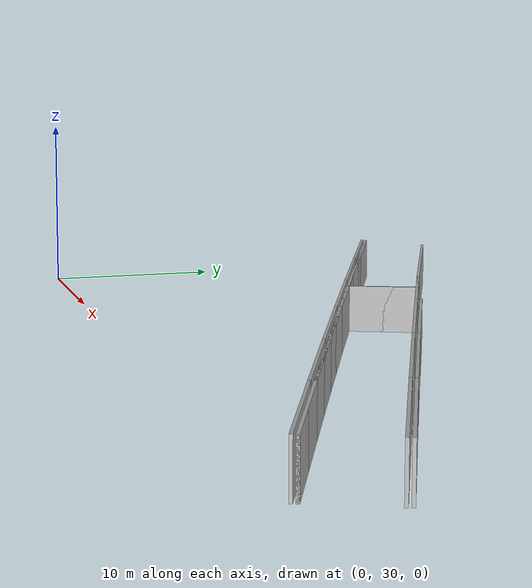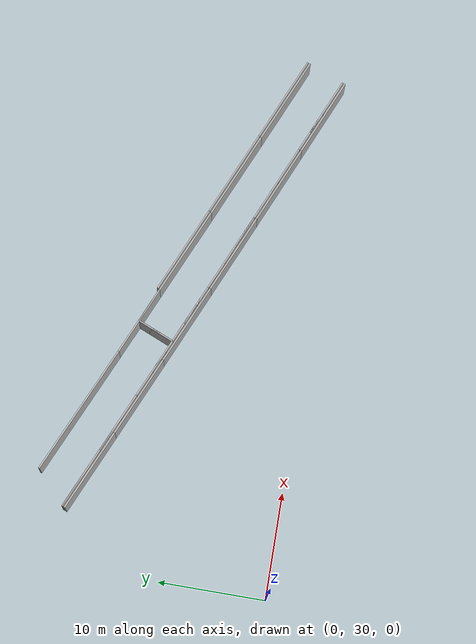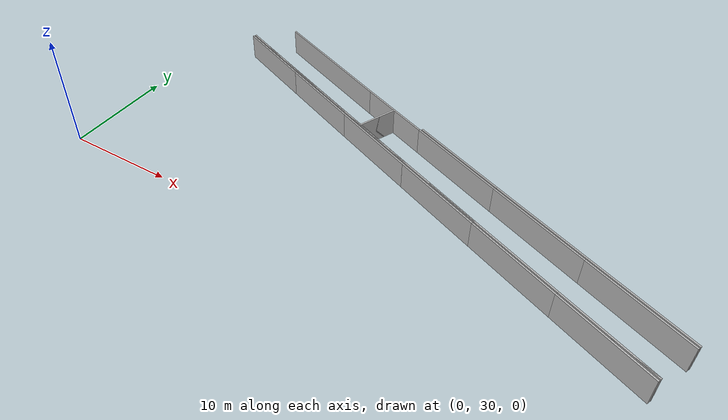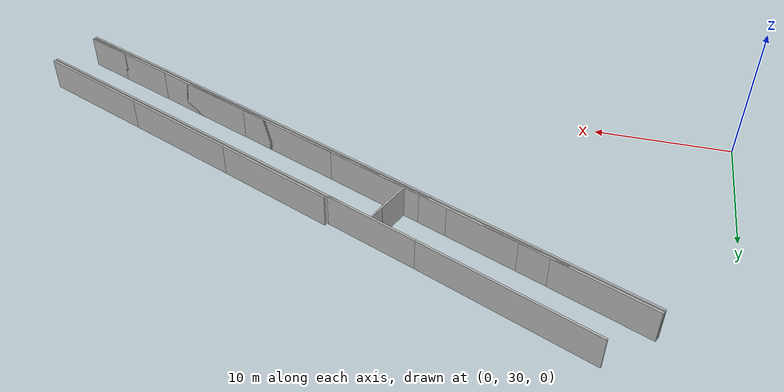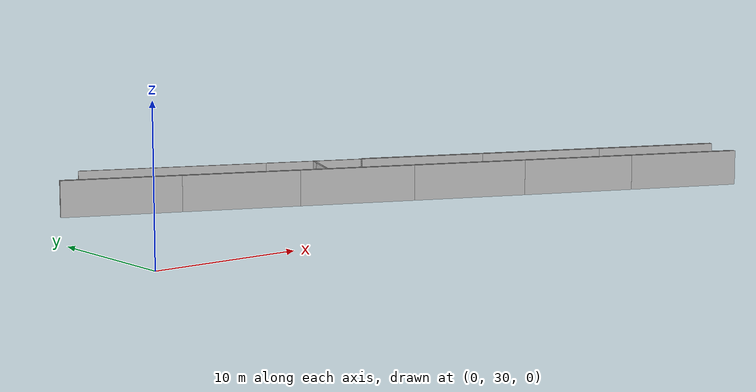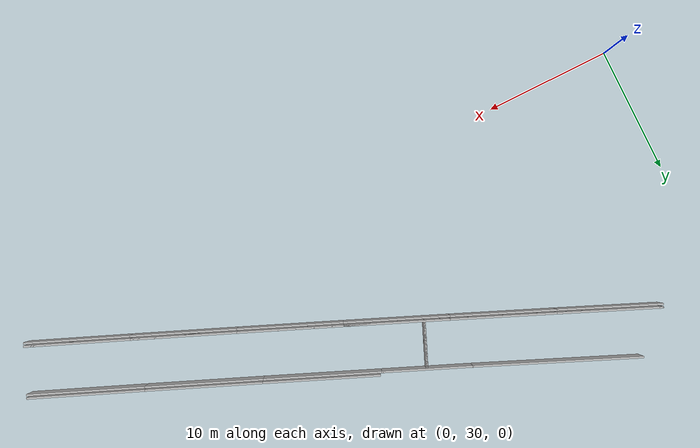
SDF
<?xml version="1.0" ?>
<sdf version="1.6">
  <model name="sps_0509">
    <pose frame="">0 0 0 0 -0 0</pose>
    <static>1</static>
    <self_collide>0</self_collide>
    <allow_auto_disable>0</allow_auto_disable>
    <link name="Wall4318">
      <kinematic>0</kinematic>
      <gravity>1</gravity>
      <self_collide>0</self_collide>
      <collision name="collision">
        <geometry>
          <box>
            <size>13.2303 0.15 2.5</size>
          </box>
        </geometry>
        <pose frame="">0 0 0 0 -0 0</pose>
      </collision>
      <visual name="visual">
        <geometry>
          <box>
            <size>13.2303 0.15 2.5</size>
          </box>
        </geometry>
        <pose frame="">0 0 0 0 -0 0</pose>
        <cast_shadows>1</cast_shadows>
        <transparency>0.0</transparency>
      </visual>
      <pose frame="">14.2392 49.8815 1.25 0 0 -0.40485</pose>
    </link>
    <link name="Wall4319">
      <kinematic>0</kinematic>
      <gravity>1</gravity>
      <self_collide>0</self_collide>
      <collision name="collision">
        <geometry>
          <box>
            <size>3.53007 0.15 2.5</size>
          </box>
        </geometry>
        <pose frame="">0 0 0 0 -0 0</pose>
      </collision>
      <visual name="visual">
        <geometry>
          <box>
            <size>3.53007 0.15 2.5</size>
          </box>
        </geometry>
        <pose frame="">0 0 0 0 -0 0</pose>
        <cast_shadows>1</cast_shadows>
        <transparency>0.0</transparency>
      </visual>
      <pose frame="">21.9471 46.5926 1.25 0 0 -0.397511</pose>
    </link>
    <link name="Wall4320">
      <kinematic>0</kinematic>
      <gravity>1</gravity>
      <self_collide>0</self_collide>
      <collision name="collision">
        <geometry>
          <box>
            <size>3.73853 0.15 2.5</size>
          </box>
        </geometry>
        <pose frame="">0 0 0 0 -0 0</pose>
      </collision>
      <visual name="visual">
        <geometry>
          <box>
            <size>3.73853 0.15 2.5</size>
          </box>
        </geometry>
        <pose frame="">0 0 0 0 -0 0</pose>
        <cast_shadows>1</cast_shadows>
        <transparency>0.0</transparency>
      </visual>
      <pose frame="">22.8471 44.1874 1.25 0 0 -1.9705</pose>
    </link>
    <link name="Wall4321">
      <kinematic>0</kinematic>
      <gravity>1</gravity>
      <self_collide>0</self_collide>
      <collision name="collision">
        <geometry>
          <box>
            <size>6.17226 0.15 2.5</size>
          </box>
        </geometry>
        <pose frame="">0 0 0 0 -0 0</pose>
      </collision>
      <visual name="visual">
        <geometry>
          <box>
            <size>6.17226 0.15 2.5</size>
          </box>
        </geometry>
        <pose frame="">0 0 0 0 -0 0</pose>
        <cast_shadows>1</cast_shadows>
        <transparency>0.0</transparency>
      </visual>
      <pose frame="">19.2779 43.6692 1.25 0 -0 2.74092</pose>
    </link>
    <link name="Wall4322">
      <kinematic>0</kinematic>
      <gravity>1</gravity>
      <self_collide>0</self_collide>
      <collision name="collision">
        <geometry>
          <box>
            <size>6.17213 0.15 2.5</size>
          </box>
        </geometry>
        <pose frame="">0 0 0 0 -0 0</pose>
      </collision>
      <visual name="visual">
        <geometry>
          <box>
            <size>6.17213 0.15 2.5</size>
          </box>
        </geometry>
        <pose frame="">0 0 0 0 -0 0</pose>
        <cast_shadows>1</cast_shadows>
        <transparency>0.0</transparency>
      </visual>
      <pose frame="">13.5966 46.0814 1.25 0 -0 2.73923</pose>
    </link>
    <link name="Wall4323">
      <kinematic>0</kinematic>
      <gravity>1</gravity>
      <self_collide>0</self_collide>
      <collision name="collision">
        <geometry>
          <box>
            <size>6.17211 0.15 2.5</size>
          </box>
        </geometry>
        <pose frame="">0 0 0 0 -0 0</pose>
      </collision>
      <visual name="visual">
        <geometry>
          <box>
            <size>6.17211 0.15 2.5</size>
          </box>
        </geometry>
        <pose frame="">0 0 0 0 -0 0</pose>
        <cast_shadows>1</cast_shadows>
        <transparency>0.0</transparency>
      </visual>
      <pose frame="">7.91964 48.5035 1.25 0 -0 2.73742</pose>
    </link>
    <link name="Wall6695">
      <kinematic>0</kinematic>
      <gravity>1</gravity>
      <self_collide>0</self_collide>
      <collision name="collision">
        <geometry>
          <box>
            <size>8.26101 0.15 2.5</size>
          </box>
        </geometry>
        <pose frame="">0 0 0 0 -0 0</pose>
      </collision>
      <visual name="visual">
        <geometry>
          <box>
            <size>8.26101 0.15 2.5</size>
          </box>
        </geometry>
        <pose frame="">0 0 0 0 -0 0</pose>
        <cast_shadows>1</cast_shadows>
        <transparency>0.0</transparency>
      </visual>
      <pose frame="">46.9576 32.0869 1.25 0 -0 2.74954</pose>
    </link>
    <link name="Wall6696">
      <kinematic>0</kinematic>
      <gravity>1</gravity>
      <self_collide>0</self_collide>
      <collision name="collision">
        <geometry>
          <box>
            <size>8.26107 0.15 2.5</size>
          </box>
        </geometry>
        <pose frame="">0 0 0 0 -0 0</pose>
      </collision>
      <visual name="visual">
        <geometry>
          <box>
            <size>8.26107 0.15 2.5</size>
          </box>
        </geometry>
        <pose frame="">0 0 0 0 -0 0</pose>
        <cast_shadows>1</cast_shadows>
        <transparency>0.0</transparency>
      </visual>
      <pose frame="">39.327 35.2523 1.25 0 -0 2.74719</pose>
    </link>
    <link name="Wall6697">
      <kinematic>0</kinematic>
      <gravity>1</gravity>
      <self_collide>0</self_collide>
      <collision name="collision">
        <geometry>
          <box>
            <size>8.26096 0.15 2.5</size>
          </box>
        </geometry>
        <pose frame="">0 0 0 0 -0 0</pose>
      </collision>
      <visual name="visual">
        <geometry>
          <box>
            <size>8.26096 0.15 2.5</size>
          </box>
        </geometry>
        <pose frame="">0 0 0 0 -0 0</pose>
        <cast_shadows>1</cast_shadows>
        <transparency>0.0</transparency>
      </visual>
      <pose frame="">31.704 38.4357 1.25 0 -0 2.74482</pose>
    </link>
    <link name="Wall6698">
      <kinematic>0</kinematic>
      <gravity>1</gravity>
      <self_collide>0</self_collide>
      <collision name="collision">
        <geometry>
          <box>
            <size>2.08902 0.15 2.5</size>
          </box>
        </geometry>
        <pose frame="">0 0 0 0 -0 0</pose>
      </collision>
      <visual name="visual">
        <geometry>
          <box>
            <size>2.08902 0.15 2.5</size>
          </box>
        </geometry>
        <pose frame="">0 0 0 0 -0 0</pose>
        <cast_shadows>1</cast_shadows>
        <transparency>0.0</transparency>
      </visual>
      <pose frame="">26.9316 40.4369 1.25 0 -0 2.74341</pose>
    </link>
    <link name="Wall6699">
      <kinematic>0</kinematic>
      <gravity>1</gravity>
      <self_collide>0</self_collide>
      <collision name="collision">
        <geometry>
          <box>
            <size>2.08884 0.15 2.5</size>
          </box>
        </geometry>
        <pose frame="">0 0 0 0 -0 0</pose>
      </collision>
      <visual name="visual">
        <geometry>
          <box>
            <size>2.08884 0.15 2.5</size>
          </box>
        </geometry>
        <pose frame="">0 0 0 0 -0 0</pose>
        <cast_shadows>1</cast_shadows>
        <transparency>0.0</transparency>
      </visual>
      <pose frame="">25.0064 41.2476 1.25 0 -0 2.74265</pose>
    </link>
    <link name="Wall6700">
      <kinematic>0</kinematic>
      <gravity>1</gravity>
      <self_collide>0</self_collide>
      <collision name="collision">
        <geometry>
          <box>
            <size>2.08875 0.15 2.5</size>
          </box>
        </geometry>
        <pose frame="">0 0 0 0 -0 0</pose>
      </collision>
      <visual name="visual">
        <geometry>
          <box>
            <size>2.08875 0.15 2.5</size>
          </box>
        </geometry>
        <pose frame="">0 0 0 0 -0 0</pose>
        <cast_shadows>1</cast_shadows>
        <transparency>0.0</transparency>
      </visual>
      <pose frame="">23.0818 42.0594 1.25 0 -0 2.74222</pose>
    </link>
    <link name="Wall6701">
      <kinematic>0</kinematic>
      <gravity>1</gravity>
      <self_collide>0</self_collide>
      <collision name="collision">
        <geometry>
          <box>
            <size>3.73853 0.15 2.5</size>
          </box>
        </geometry>
        <pose frame="">0 0 0 0 -0 0</pose>
      </collision>
      <visual name="visual">
        <geometry>
          <box>
            <size>3.73853 0.15 2.5</size>
          </box>
        </geometry>
        <pose frame="">0 0 0 0 -0 0</pose>
        <cast_shadows>1</cast_shadows>
        <transparency>0.0</transparency>
      </visual>
      <pose frame="">22.8471 44.1874 1.25 0 -0 1.17109</pose>
    </link>
    <link name="Wall6702">
      <kinematic>0</kinematic>
      <gravity>1</gravity>
      <self_collide>0</self_collide>
      <collision name="collision">
        <geometry>
          <box>
            <size>3.52457 0.15 2.5</size>
          </box>
        </geometry>
        <pose frame="">0 0 0 0 -0 0</pose>
      </collision>
      <visual name="visual">
        <geometry>
          <box>
            <size>3.52457 0.15 2.5</size>
          </box>
        </geometry>
        <pose frame="">0 0 0 0 -0 0</pose>
        <cast_shadows>1</cast_shadows>
        <transparency>0.0</transparency>
      </visual>
      <pose frame="">25.1994 45.2271 1.25 0 0 -0.397509</pose>
    </link>
    <link name="Wall6703">
      <kinematic>0</kinematic>
      <gravity>1</gravity>
      <self_collide>0</self_collide>
      <collision name="collision">
        <geometry>
          <box>
            <size>9.17308 0.15 2.5</size>
          </box>
        </geometry>
        <pose frame="">0 0 0 0 -0 0</pose>
      </collision>
      <visual name="visual">
        <geometry>
          <box>
            <size>9.17308 0.15 2.5</size>
          </box>
        </geometry>
        <pose frame="">0 0 0 0 -0 0</pose>
        <cast_shadows>1</cast_shadows>
        <transparency>0.0</transparency>
      </visual>
      <pose frame="">31.0547 42.7731 1.25 0 0 -0.396619</pose>
    </link>
    <link name="Wall6704">
      <kinematic>0</kinematic>
      <gravity>1</gravity>
      <self_collide>0</self_collide>
      <collision name="collision">
        <geometry>
          <box>
            <size>9.173 0.15 2.5</size>
          </box>
        </geometry>
        <pose frame="">0 0 0 0 -0 0</pose>
      </collision>
      <visual name="visual">
        <geometry>
          <box>
            <size>9.173 0.15 2.5</size>
          </box>
        </geometry>
        <pose frame="">0 0 0 0 -0 0</pose>
        <cast_shadows>1</cast_shadows>
        <transparency>0.0</transparency>
      </visual>
      <pose frame="">39.5199 39.2395 1.25 0 0 -0.394265</pose>
    </link>
    <link name="Wall6705">
      <kinematic>0</kinematic>
      <gravity>1</gravity>
      <self_collide>0</self_collide>
      <collision name="collision">
        <geometry>
          <box>
            <size>9.17274 0.15 2.5</size>
          </box>
        </geometry>
        <pose frame="">0 0 0 0 -0 0</pose>
      </collision>
      <visual name="visual">
        <geometry>
          <box>
            <size>9.17274 0.15 2.5</size>
          </box>
        </geometry>
        <pose frame="">0 0 0 0 -0 0</pose>
        <cast_shadows>1</cast_shadows>
        <transparency>0.0</transparency>
      </visual>
      <pose frame="">47.9932 35.726 1.25 0 0 -0.391885</pose>
    </link>
    <link name="Wall13867">
      <kinematic>0</kinematic>
      <gravity>1</gravity>
      <self_collide>0</self_collide>
      <collision name="collision">
        <geometry>
          <box>
            <size>7.05464 0.15 2.5</size>
          </box>
        </geometry>
        <pose frame="">0 0 0 0 -0 0</pose>
      </collision>
      <visual name="visual">
        <geometry>
          <box>
            <size>7.05464 0.15 2.5</size>
          </box>
        </geometry>
        <pose frame="">0 0 0 0 -0 0</pose>
        <cast_shadows>1</cast_shadows>
        <transparency>0.0</transparency>
      </visual>
      <pose frame="">23.572 45.9104 1.25 0 -0 2.74408</pose>
    </link>
    <link name="Wall18355">
      <kinematic>0</kinematic>
      <gravity>1</gravity>
      <self_collide>0</self_collide>
      <collision name="collision">
        <geometry>
          <box>
            <size>9.17308 0.15 2.5</size>
          </box>
        </geometry>
        <pose frame="">0 0 0 0 -0 0</pose>
      </collision>
      <visual name="visual">
        <geometry>
          <box>
            <size>9.17308 0.15 2.5</size>
          </box>
        </geometry>
        <pose frame="">0 0 0 0 -0 0</pose>
        <cast_shadows>1</cast_shadows>
        <transparency>0.0</transparency>
      </visual>
      <pose frame="">31.0547 42.7731 1.25 0 0 -0.396619</pose>
    </link>
    <link name="Wall18356">
      <kinematic>0</kinematic>
      <gravity>1</gravity>
      <self_collide>0</self_collide>
      <collision name="collision">
        <geometry>
          <box>
            <size>9.173 0.15 2.5</size>
          </box>
        </geometry>
        <pose frame="">0 0 0 0 -0 0</pose>
      </collision>
      <visual name="visual">
        <geometry>
          <box>
            <size>9.173 0.15 2.5</size>
          </box>
        </geometry>
        <pose frame="">0 0 0 0 -0 0</pose>
        <cast_shadows>1</cast_shadows>
        <transparency>0.0</transparency>
      </visual>
      <pose frame="">39.5199 39.2395 1.25 0 0 -0.394265</pose>
    </link>
    <link name="Wall18357">
      <kinematic>0</kinematic>
      <gravity>1</gravity>
      <self_collide>0</self_collide>
      <collision name="collision">
        <geometry>
          <box>
            <size>9.17274 0.15 2.5</size>
          </box>
        </geometry>
        <pose frame="">0 0 0 0 -0 0</pose>
      </collision>
      <visual name="visual">
        <geometry>
          <box>
            <size>9.17274 0.15 2.5</size>
          </box>
        </geometry>
        <pose frame="">0 0 0 0 -0 0</pose>
        <cast_shadows>1</cast_shadows>
        <transparency>0.0</transparency>
      </visual>
      <pose frame="">47.9932 35.726 1.25 0 0 -0.391885</pose>
    </link>
    <link name="Wall35042">
      <kinematic>0</kinematic>
      <gravity>1</gravity>
      <self_collide>0</self_collide>
      <collision name="collision">
        <geometry>
          <box>
            <size>9.13876 0.15 2.5</size>
          </box>
        </geometry>
        <pose frame="">0 0 0 0 -0 0</pose>
      </collision>
      <visual name="visual">
        <geometry>
          <box>
            <size>9.13876 0.15 2.5</size>
          </box>
        </geometry>
        <pose frame="">0 0 0 0 -0 0</pose>
        <cast_shadows>1</cast_shadows>
        <transparency>0.0</transparency>
      </visual>
      <pose frame="">31.2308 42.9704 1.25 0 0 -0.396606</pose>
    </link>
    <link name="Wall35043">
      <kinematic>0</kinematic>
      <gravity>1</gravity>
      <self_collide>0</self_collide>
      <collision name="collision">
        <geometry>
          <box>
            <size>9.13849 0.15 2.5</size>
          </box>
        </geometry>
        <pose frame="">0 0 0 0 -0 0</pose>
      </collision>
      <visual name="visual">
        <geometry>
          <box>
            <size>9.13849 0.15 2.5</size>
          </box>
        </geometry>
        <pose frame="">0 0 0 0 -0 0</pose>
        <cast_shadows>1</cast_shadows>
        <transparency>0.0</transparency>
      </visual>
      <pose frame="">39.6641 39.4501 1.25 0 0 -0.394266</pose>
    </link>
    <link name="Wall35044">
      <kinematic>0</kinematic>
      <gravity>1</gravity>
      <self_collide>0</self_collide>
      <collision name="collision">
        <geometry>
          <box>
            <size>9.13886 0.15 2.5</size>
          </box>
        </geometry>
        <pose frame="">0 0 0 0 -0 0</pose>
      </collision>
      <visual name="visual">
        <geometry>
          <box>
            <size>9.13886 0.15 2.5</size>
          </box>
        </geometry>
        <pose frame="">0 0 0 0 -0 0</pose>
        <cast_shadows>1</cast_shadows>
        <transparency>0.0</transparency>
      </visual>
      <pose frame="">48.1059 35.9497 1.25 0 0 -0.391885</pose>
    </link>
    <link name="Wall37653">
      <kinematic>0</kinematic>
      <gravity>1</gravity>
      <self_collide>0</self_collide>
      <collision name="collision">
        <geometry>
          <box>
            <size>13.2303 0.15 2.5</size>
          </box>
        </geometry>
        <pose frame="">0 0 0 0 -0 0</pose>
      </collision>
      <visual name="visual">
        <geometry>
          <box>
            <size>13.2303 0.15 2.5</size>
          </box>
        </geometry>
        <pose frame="">0 0 0 0 -0 0</pose>
        <cast_shadows>1</cast_shadows>
        <transparency>0.0</transparency>
      </visual>
      <pose frame="">14.2392 49.8815 1.25 0 0 -0.40485</pose>
    </link>
    <link name="Wall37874">
      <kinematic>0</kinematic>
      <gravity>1</gravity>
      <self_collide>0</self_collide>
      <collision name="collision">
        <geometry>
          <box>
            <size>8.26171 0.15 2.5</size>
          </box>
        </geometry>
        <pose frame="">0 0 0 0 -0 0</pose>
      </collision>
      <visual name="visual">
        <geometry>
          <box>
            <size>8.26171 0.15 2.5</size>
          </box>
        </geometry>
        <pose frame="">0 0 0 0 -0 0</pose>
        <cast_shadows>1</cast_shadows>
        <transparency>0.0</transparency>
      </visual>
      <pose frame="">8.78036 47.8648 1.25 0 0 -0.403864</pose>
    </link>
    <link name="Wall37875">
      <kinematic>0</kinematic>
      <gravity>1</gravity>
      <self_collide>0</self_collide>
      <collision name="collision">
        <geometry>
          <box>
            <size>8.26153 0.15 2.5</size>
          </box>
        </geometry>
        <pose frame="">0 0 0 0 -0 0</pose>
      </collision>
      <visual name="visual">
        <geometry>
          <box>
            <size>8.26153 0.15 2.5</size>
          </box>
        </geometry>
        <pose frame="">0 0 0 0 -0 0</pose>
        <cast_shadows>1</cast_shadows>
        <transparency>0.0</transparency>
      </visual>
      <pose frame="">16.3812 44.6272 1.25 0 0 -0.401497</pose>
    </link>
    <link name="Wall37876">
      <kinematic>0</kinematic>
      <gravity>1</gravity>
      <self_collide>0</self_collide>
      <collision name="collision">
        <geometry>
          <box>
            <size>8.2616 0.15 2.5</size>
          </box>
        </geometry>
        <pose frame="">0 0 0 0 -0 0</pose>
      </collision>
      <visual name="visual">
        <geometry>
          <box>
            <size>8.2616 0.15 2.5</size>
          </box>
        </geometry>
        <pose frame="">0 0 0 0 -0 0</pose>
        <cast_shadows>1</cast_shadows>
        <transparency>0.0</transparency>
      </visual>
      <pose frame="">23.9896 41.4076 1.25 0 0 -0.399127</pose>
    </link>
    <link name="Wall37877">
      <kinematic>0</kinematic>
      <gravity>1</gravity>
      <self_collide>0</self_collide>
      <collision name="collision">
        <geometry>
          <box>
            <size>8.26186 0.15 2.5</size>
          </box>
        </geometry>
        <pose frame="">0 0 0 0 -0 0</pose>
      </collision>
      <visual name="visual">
        <geometry>
          <box>
            <size>8.26186 0.15 2.5</size>
          </box>
        </geometry>
        <pose frame="">0 0 0 0 -0 0</pose>
        <cast_shadows>1</cast_shadows>
        <transparency>0.0</transparency>
      </visual>
      <pose frame="">31.6057 38.2059 1.25 0 0 -0.396781</pose>
    </link>
    <link name="Wall37878">
      <kinematic>0</kinematic>
      <gravity>1</gravity>
      <self_collide>0</self_collide>
      <collision name="collision">
        <geometry>
          <box>
            <size>8.2615 0.15 2.5</size>
          </box>
        </geometry>
        <pose frame="">0 0 0 0 -0 0</pose>
      </collision>
      <visual name="visual">
        <geometry>
          <box>
            <size>8.2615 0.15 2.5</size>
          </box>
        </geometry>
        <pose frame="">0 0 0 0 -0 0</pose>
        <cast_shadows>1</cast_shadows>
        <transparency>0.0</transparency>
      </visual>
      <pose frame="">39.2293 35.0222 1.25 0 0 -0.394414</pose>
    </link>
    <link name="Wall37879">
      <kinematic>0</kinematic>
      <gravity>1</gravity>
      <self_collide>0</self_collide>
      <collision name="collision">
        <geometry>
          <box>
            <size>8.26159 0.15 2.5</size>
          </box>
        </geometry>
        <pose frame="">0 0 0 0 -0 0</pose>
      </collision>
      <visual name="visual">
        <geometry>
          <box>
            <size>8.26159 0.15 2.5</size>
          </box>
        </geometry>
        <pose frame="">0 0 0 0 -0 0</pose>
        <cast_shadows>1</cast_shadows>
        <transparency>0.0</transparency>
      </visual>
      <pose frame="">46.8603 31.8566 1.25 0 0 -0.39205</pose>
    </link>
    <link name="Wall37957">
      <kinematic>0</kinematic>
      <gravity>1</gravity>
      <self_collide>0</self_collide>
      <collision name="collision">
        <geometry>
          <box>
            <size>8.26105 0.15 2.5</size>
          </box>
        </geometry>
        <pose frame="">0 0 0 0 -0 0</pose>
      </collision>
      <visual name="visual">
        <geometry>
          <box>
            <size>8.26105 0.15 2.5</size>
          </box>
        </geometry>
        <pose frame="">0 0 0 0 -0 0</pose>
        <cast_shadows>1</cast_shadows>
        <transparency>0.0</transparency>
      </visual>
      <pose frame="">8.88045 48.0939 1.25 0 0 -0.403866</pose>
    </link>
    <link name="Wall37958">
      <kinematic>0</kinematic>
      <gravity>1</gravity>
      <self_collide>0</self_collide>
      <collision name="collision">
        <geometry>
          <box>
            <size>8.26098 0.15 2.5</size>
          </box>
        </geometry>
        <pose frame="">0 0 0 0 -0 0</pose>
      </collision>
      <visual name="visual">
        <geometry>
          <box>
            <size>8.26098 0.15 2.5</size>
          </box>
        </geometry>
        <pose frame="">0 0 0 0 -0 0</pose>
        <cast_shadows>1</cast_shadows>
        <transparency>0.0</transparency>
      </visual>
      <pose frame="">16.4807 44.8565 1.25 0 0 -0.401509</pose>
    </link>
    <link name="Wall37959">
      <kinematic>0</kinematic>
      <gravity>1</gravity>
      <self_collide>0</self_collide>
      <collision name="collision">
        <geometry>
          <box>
            <size>8.26108 0.15 2.5</size>
          </box>
        </geometry>
        <pose frame="">0 0 0 0 -0 0</pose>
      </collision>
      <visual name="visual">
        <geometry>
          <box>
            <size>8.26108 0.15 2.5</size>
          </box>
        </geometry>
        <pose frame="">0 0 0 0 -0 0</pose>
        <cast_shadows>1</cast_shadows>
        <transparency>0.0</transparency>
      </visual>
      <pose frame="">24.0886 41.6371 1.25 0 0 -0.399129</pose>
    </link>
    <link name="Wall37960">
      <kinematic>0</kinematic>
      <gravity>1</gravity>
      <self_collide>0</self_collide>
      <collision name="collision">
        <geometry>
          <box>
            <size>8.26096 0.15 2.5</size>
          </box>
        </geometry>
        <pose frame="">0 0 0 0 -0 0</pose>
      </collision>
      <visual name="visual">
        <geometry>
          <box>
            <size>8.26096 0.15 2.5</size>
          </box>
        </geometry>
        <pose frame="">0 0 0 0 -0 0</pose>
        <cast_shadows>1</cast_shadows>
        <transparency>0.0</transparency>
      </visual>
      <pose frame="">31.704 38.4357 1.25 0 0 -0.396771</pose>
    </link>
    <link name="Wall37961">
      <kinematic>0</kinematic>
      <gravity>1</gravity>
      <self_collide>0</self_collide>
      <collision name="collision">
        <geometry>
          <box>
            <size>8.26107 0.15 2.5</size>
          </box>
        </geometry>
        <pose frame="">0 0 0 0 -0 0</pose>
      </collision>
      <visual name="visual">
        <geometry>
          <box>
            <size>8.26107 0.15 2.5</size>
          </box>
        </geometry>
        <pose frame="">0 0 0 0 -0 0</pose>
        <cast_shadows>1</cast_shadows>
        <transparency>0.0</transparency>
      </visual>
      <pose frame="">39.327 35.2523 1.25 0 0 -0.394404</pose>
    </link>
    <link name="Wall37962">
      <kinematic>0</kinematic>
      <gravity>1</gravity>
      <self_collide>0</self_collide>
      <collision name="collision">
        <geometry>
          <box>
            <size>8.26101 0.15 2.5</size>
          </box>
        </geometry>
        <pose frame="">0 0 0 0 -0 0</pose>
      </collision>
      <visual name="visual">
        <geometry>
          <box>
            <size>8.26101 0.15 2.5</size>
          </box>
        </geometry>
        <pose frame="">0 0 0 0 -0 0</pose>
        <cast_shadows>1</cast_shadows>
        <transparency>0.0</transparency>
      </visual>
      <pose frame="">46.9576 32.0869 1.25 0 0 -0.392055</pose>
    </link>
  </model>
</sdf>
